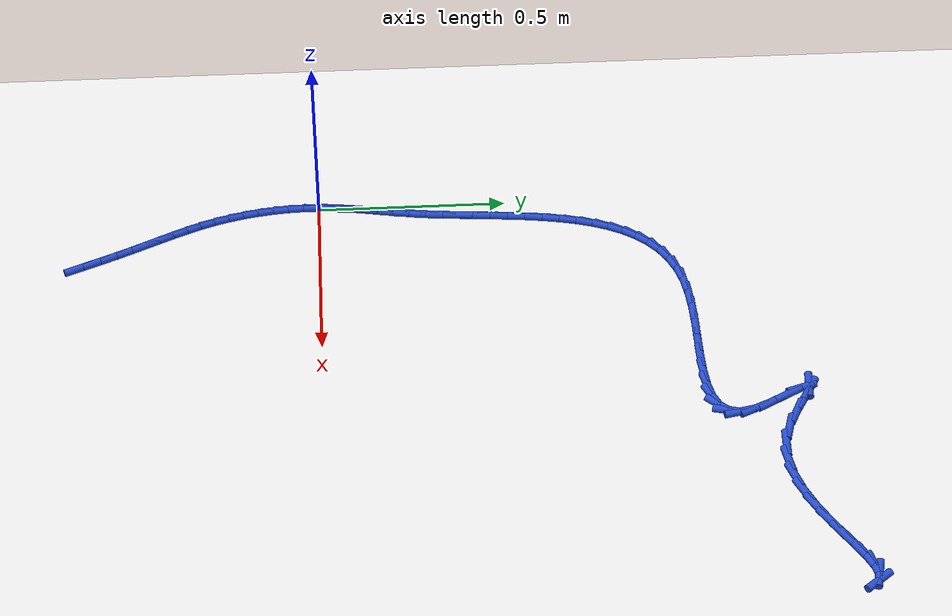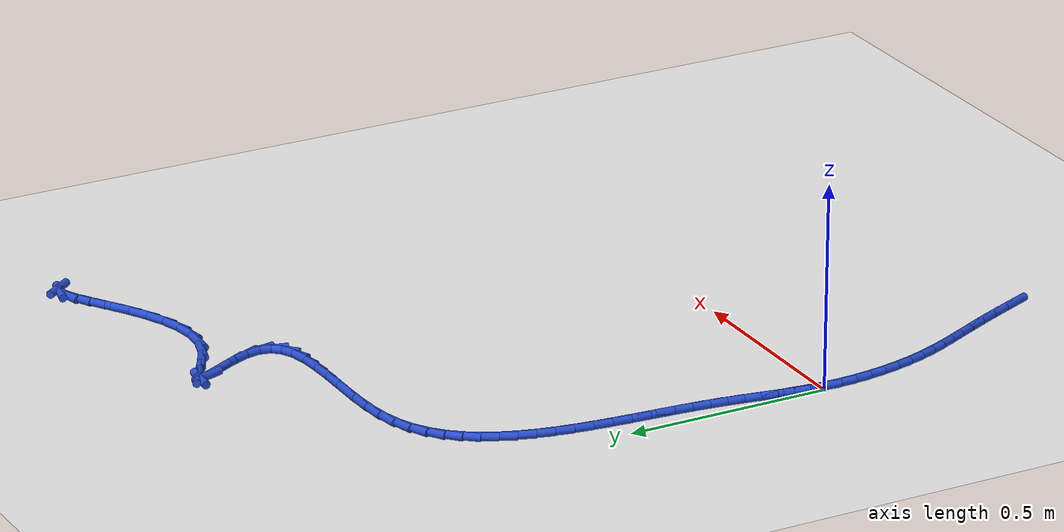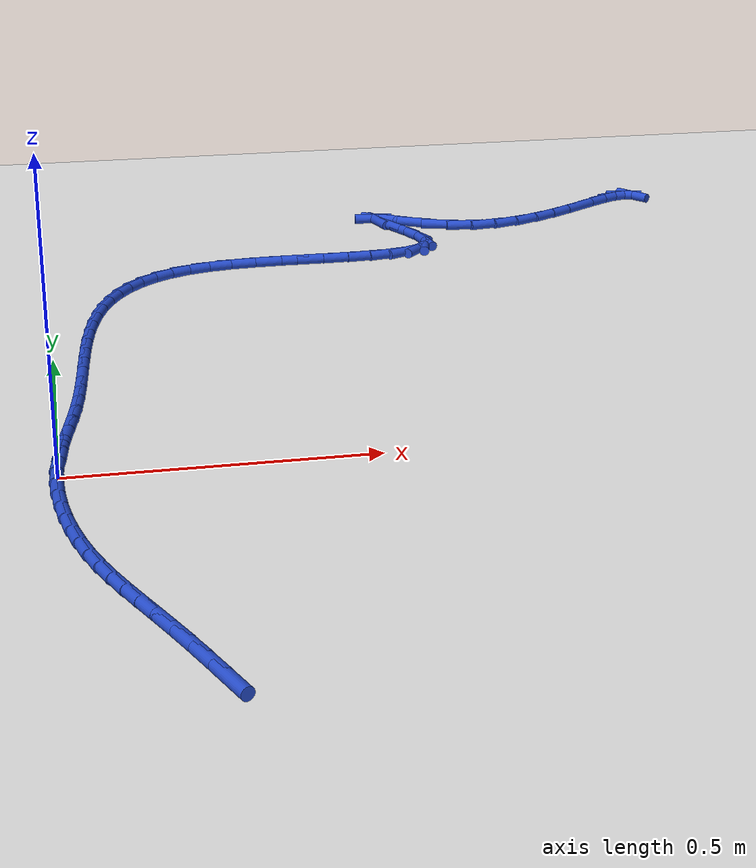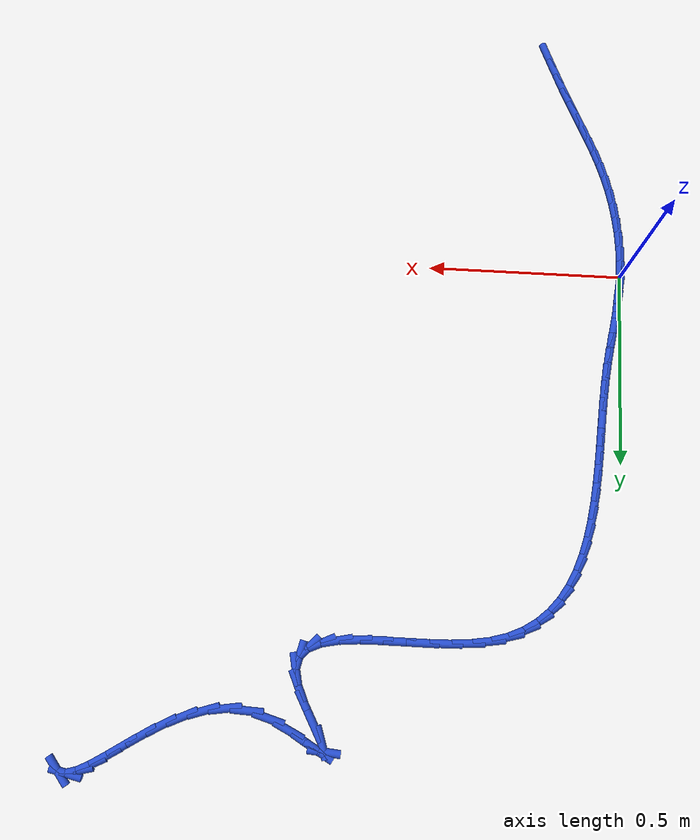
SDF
<sdf version="1.6">
 <world name="default">
  <model name="ground_plane">
   <static>1</static>
   <link name="link">
    <collision name="collision">
     <geometry><plane><normal>0 0 1</normal><size>100 100</size></plane></geometry>
     <surface><friction><ode><mu>100</mu><mu2>50</mu2></ode></friction></surface>
    </collision>
    <visual name="visual">
     <cast_shadows>0</cast_shadows>
     <geometry><plane><normal>0 0 1</normal><size>100 100</size></plane></geometry>
     <material>
      <script><uri>file://media/materials/scripts/gazebo.material</uri><name>Gazebo/WhiteGlow</name></script>
     </material>
    </visual>
   </link>
  </model>
  <model name="line">
   <link name="link_0">
    <pose>-6.938893903907228e-18 -6.245004513516506e-17 0.01 0 1.57 1.5021006200074025</pose>
    <collision name="collision">
     <geometry><cylinder><radius>0.01</radius><length>0.08</length></cylinder></geometry>
    </collision>
    <visual name="visual">
     <material>
      <script><name>Gazebo/Blue</name><uri>file://media/materials/scripts/gazebo.material</uri></script>
     </material>
     <geometry><cylinder><radius>0.01</radius><length>0.08</length></cylinder></geometry>
    </visual>
   </link>
   <link name="link_1">
    <pose>0.0027267239276529457 0.03963032738421461 0.01 0 1.57 1.4554943198196943</pose>
    <collision name="collision">
     <geometry><cylinder><radius>0.01</radius><length>0.08</length></cylinder></geometry>
    </collision>
    <visual name="visual">
     <material>
      <script><name>Gazebo/Blue</name><uri>file://media/materials/scripts/gazebo.material</uri></script>
     </material>
     <geometry><cylinder><radius>0.01</radius><length>0.08</length></cylinder></geometry>
    </visual>
   </link>
   <link name="link_2">
    <pose>0.007264452210305063 0.07881092391591504 0.01 0 1.57 1.4231866468837562</pose>
    <collision name="collision">
     <geometry><cylinder><radius>0.01</radius><length>0.08</length></cylinder></geometry>
    </collision>
    <visual name="visual">
     <material>
      <script><name>Gazebo/Blue</name><uri>file://media/materials/scripts/gazebo.material</uri></script>
     </material>
     <geometry><cylinder><radius>0.01</radius><length>0.08</length></cylinder></geometry>
    </visual>
   </link>
   <link name="link_3">
    <pose>0.013079901349454644 0.11792184670235839 0.01 0 1.57 1.4059026485359816</pose>
    <collision name="collision">
     <geometry><cylinder><radius>0.01</radius><length>0.08</length></cylinder></geometry>
    </collision>
    <visual name="visual">
     <material>
      <script><name>Gazebo/Blue</name><uri>file://media/materials/scripts/gazebo.material</uri></script>
     </material>
     <geometry><cylinder><radius>0.01</radius><length>0.08</length></cylinder></geometry>
    </visual>
   </link>
   <link name="link_4">
    <pose>0.01963978784659997 0.1573431528508017 0.01 0 1.57 1.4035683912971355</pose>
    <collision name="collision">
     <geometry><cylinder><radius>0.01</radius><length>0.08</length></cylinder></geometry>
    </collision>
    <visual name="visual">
     <material>
      <script><name>Gazebo/Blue</name><uri>file://media/materials/scripts/gazebo.material</uri></script>
     </material>
     <geometry><cylinder><radius>0.01</radius><length>0.08</length></cylinder></geometry>
    </visual>
   </link>
   <link name="link_5">
    <pose>0.026410828203239364 0.1974548994685022 0.01 0 1.57 1.4154633653897009</pose>
    <collision name="collision">
     <geometry><cylinder><radius>0.01</radius><length>0.08</length></cylinder></geometry>
    </collision>
    <visual name="visual">
     <material>
      <script><name>Gazebo/Blue</name><uri>file://media/materials/scripts/gazebo.material</uri></script>
     </material>
     <geometry><cylinder><radius>0.01</radius><length>0.08</length></cylinder></geometry>
    </visual>
   </link>
   <link name="link_6">
    <pose>0.0328597389208711 0.23863714366271702 0.01 0 1.57 1.4402662695296489</pose>
    <collision name="collision">
     <geometry><cylinder><radius>0.01</radius><length>0.08</length></cylinder></geometry>
    </collision>
    <visual name="visual">
     <material>
      <script><name>Gazebo/Blue</name><uri>file://media/materials/scripts/gazebo.material</uri></script>
     </material>
     <geometry><cylinder><radius>0.01</radius><length>0.08</length></cylinder></geometry>
    </visual>
   </link>
   <link name="link_7">
    <pose>0.038456108458912466 0.2812675512997279 0.01 0 1.57 1.4690482943396301</pose>
    <collision name="collision">
     <geometry><cylinder><radius>0.01</radius><length>0.08</length></cylinder></geometry>
    </collision>
    <visual name="visual">
     <material>
      <script><name>Gazebo/Blue</name><uri>file://media/materials/scripts/gazebo.material</uri></script>
     </material>
     <geometry><cylinder><radius>0.01</radius><length>0.08</length></cylinder></geometry>
    </visual>
   </link>
   <link name="link_8">
    <pose>0.0429696073407799 0.32547393481912695 0.01 0 1.57 1.488264325107925</pose>
    <collision name="collision">
     <geometry><cylinder><radius>0.01</radius><length>0.08</length></cylinder></geometry>
    </collision>
    <visual name="visual">
     <material>
      <script><name>Gazebo/Blue</name><uri>file://media/materials/scripts/gazebo.material</uri></script>
     </material>
     <geometry><cylinder><radius>0.01</radius><length>0.08</length></cylinder></geometry>
    </visual>
   </link>
   <link name="link_9">
    <pose>0.04672879912465362 0.3709187628207979 0.01 0 1.57 1.4976051488358824</pose>
    <collision name="collision">
     <geometry><cylinder><radius>0.01</radius><length>0.08</length></cylinder></geometry>
    </collision>
    <visual name="visual">
     <material>
      <script><name>Gazebo/Blue</name><uri>file://media/materials/scripts/gazebo.material</uri></script>
     </material>
     <geometry><cylinder><radius>0.01</radius><length>0.08</length></cylinder></geometry>
    </visual>
   </link>
   <link name="link_10">
    <pose>0.05012324476902144 0.4172137164324141 0.01 0 1.57 1.4977975830449848</pose>
    <collision name="collision">
     <geometry><cylinder><radius>0.01</radius><length>0.08</length></cylinder></geometry>
    </collision>
    <visual name="visual">
     <material>
      <script><name>Gazebo/Blue</name><uri>file://media/materials/scripts/gazebo.material</uri></script>
     </material>
     <geometry><cylinder><radius>0.01</radius><length>0.08</length></cylinder></geometry>
    </visual>
   </link>
   <link name="link_11">
    <pose>0.05354250523237119 0.4639704767816501 0.01 0 1.57 1.489116066419774</pose>
    <collision name="collision">
     <geometry><cylinder><radius>0.01</radius><length>0.08</length></cylinder></geometry>
    </collision>
    <visual name="visual">
     <material>
      <script><name>Gazebo/Blue</name><uri>file://media/materials/scripts/gazebo.material</uri></script>
     </material>
     <geometry><cylinder><radius>0.01</radius><length>0.08</length></cylinder></geometry>
    </visual>
   </link>
   <link name="link_12">
    <pose>0.05737614147319069 0.5108007249961795 0.01 0 1.57 1.4714250133631803</pose>
    <collision name="collision">
     <geometry><cylinder><radius>0.01</radius><length>0.08</length></cylinder></geometry>
    </collision>
    <visual name="visual">
     <material>
      <script><name>Gazebo/Blue</name><uri>file://media/materials/scripts/gazebo.material</uri></script>
     </material>
     <geometry><cylinder><radius>0.01</radius><length>0.08</length></cylinder></geometry>
    </visual>
   </link>
   <link name="link_13">
    <pose>0.06201371444996775 0.5573161422036758 0.01 0 1.57 1.4441952107664746</pose>
    <collision name="collision">
     <geometry><cylinder><radius>0.01</radius><length>0.08</length></cylinder></geometry>
    </collision>
    <visual name="visual">
     <material>
      <script><name>Gazebo/Blue</name><uri>file://media/materials/scripts/gazebo.material</uri></script>
     </material>
     <geometry><cylinder><radius>0.01</radius><length>0.08</length></cylinder></geometry>
    </visual>
   </link>
   <link name="link_14">
    <pose>0.06784478512119022 0.6031284095318131 0.01 0 1.57 1.4065036133232842</pose>
    <collision name="collision">
     <geometry><cylinder><radius>0.01</radius><length>0.08</length></cylinder></geometry>
    </collision>
    <visual name="visual">
     <material>
      <script><name>Gazebo/Blue</name><uri>file://media/materials/scripts/gazebo.material</uri></script>
     </material>
     <geometry><cylinder><radius>0.01</radius><length>0.08</length></cylinder></geometry>
    </visual>
   </link>
   <link name="link_15">
    <pose>0.0752589144453459 0.6478492081082656 0.01 0 1.57 1.3570331334644816</pose>
    <collision name="collision">
     <geometry><cylinder><radius>0.01</radius><length>0.08</length></cylinder></geometry>
    </collision>
    <visual name="visual">
     <material>
      <script><name>Gazebo/Blue</name><uri>file://media/materials/scripts/gazebo.material</uri></script>
     </material>
     <geometry><cylinder><radius>0.01</radius><length>0.08</length></cylinder></geometry>
    </visual>
   </link>
   <link name="link_16">
    <pose>0.08464566338092261 0.6910902190607068 0.01 0 1.57 1.2941041055894604</pose>
    <collision name="collision">
     <geometry><cylinder><radius>0.01</radius><length>0.08</length></cylinder></geometry>
    </collision>
    <visual name="visual">
     <material>
      <script><name>Gazebo/Blue</name><uri>file://media/materials/scripts/gazebo.material</uri></script>
     </material>
     <geometry><cylinder><radius>0.01</radius><length>0.08</length></cylinder></geometry>
    </visual>
   </link>
   <link name="link_17">
    <pose>0.0963945928864082 0.7324631235168105 0.01 0 1.57 1.215796517895862</pose>
    <collision name="collision">
     <geometry><cylinder><radius>0.01</radius><length>0.08</length></cylinder></geometry>
    </collision>
    <visual name="visual">
     <material>
      <script><name>Gazebo/Blue</name><uri>file://media/materials/scripts/gazebo.material</uri></script>
     </material>
     <geometry><cylinder><radius>0.01</radius><length>0.08</length></cylinder></geometry>
    </visual>
   </link>
   <link name="link_18">
    <pose>0.11089526392029046 0.7715796026042507 0.01 0 1.57 1.1202603138324374</pose>
    <collision name="collision">
     <geometry><cylinder><radius>0.01</radius><length>0.08</length></cylinder></geometry>
    </collision>
    <visual name="visual">
     <material>
      <script><name>Gazebo/Blue</name><uri>file://media/materials/scripts/gazebo.material</uri></script>
     </material>
     <geometry><cylinder><radius>0.01</radius><length>0.08</length></cylinder></geometry>
    </visual>
   </link>
   <link name="link_19">
    <pose>0.1285372374410572 0.8080513374507012 0.01 0 1.57 1.0063334147361882</pose>
    <collision name="collision">
     <geometry><cylinder><radius>0.01</radius><length>0.08</length></cylinder></geometry>
    </collision>
    <visual name="visual">
     <material>
      <script><name>Gazebo/Blue</name><uri>file://media/materials/scripts/gazebo.material</uri></script>
     </material>
     <geometry><cylinder><radius>0.01</radius><length>0.08</length></cylinder></geometry>
    </visual>
   </link>
   <link name="link_20">
    <pose>0.1497100744071963 0.8414900091838358 0.01 0 1.57 0.8745097342246216</pose>
    <collision name="collision">
     <geometry><cylinder><radius>0.01</radius><length>0.08</length></cylinder></geometry>
    </collision>
    <visual name="visual">
     <material>
      <script><name>Gazebo/Blue</name><uri>file://media/materials/scripts/gazebo.material</uri></script>
     </material>
     <geometry><cylinder><radius>0.01</radius><length>0.08</length></cylinder></geometry>
    </visual>
   </link>
   <link name="link_21">
    <pose>0.17480333577719556 0.8715072989313284 0.01 0 1.57 0.7279966299282523</pose>
    <collision name="collision">
     <geometry><cylinder><radius>0.01</radius><length>0.08</length></cylinder></geometry>
    </collision>
    <visual name="visual">
     <material>
      <script><name>Gazebo/Blue</name><uri>file://media/materials/scripts/gazebo.material</uri></script>
     </material>
     <geometry><cylinder><radius>0.01</radius><length>0.08</length></cylinder></geometry>
    </visual>
   </link>
   <link name="link_22">
    <pose>0.20420658250954285 0.8977148878208531 0.01 0 1.57 0.5731269458894008</pose>
    <collision name="collision">
     <geometry><cylinder><radius>0.01</radius><length>0.08</length></cylinder></geometry>
    </collision>
    <visual name="visual">
     <material>
      <script><name>Gazebo/Blue</name><uri>file://media/materials/scripts/gazebo.material</uri></script>
     </material>
     <geometry><cylinder><radius>0.01</radius><length>0.08</length></cylinder></geometry>
    </visual>
   </link>
   <link name="link_23">
    <pose>0.23830937556272588 0.9197244569800833 0.01 0 1.57 0.4183225107185028</pose>
    <collision name="collision">
     <geometry><cylinder><radius>0.01</radius><length>0.08</length></cylinder></geometry>
    </collision>
    <visual name="visual">
     <material>
      <script><name>Gazebo/Blue</name><uri>file://media/materials/scripts/gazebo.material</uri></script>
     </material>
     <geometry><cylinder><radius>0.01</radius><length>0.08</length></cylinder></geometry>
    </visual>
   </link>
   <link name="link_24">
    <pose>0.27750127589523255 0.9371476875366931 0.01 0 1.57 0.2717907313782398</pose>
    <collision name="collision">
     <geometry><cylinder><radius>0.01</radius><length>0.08</length></cylinder></geometry>
    </collision>
    <visual name="visual">
     <material>
      <script><name>Gazebo/Blue</name><uri>file://media/materials/scripts/gazebo.material</uri></script>
     </material>
     <geometry><cylinder><radius>0.01</radius><length>0.08</length></cylinder></geometry>
    </visual>
   </link>
   <link name="link_25">
    <pose>0.32217133962764966 0.949596652982366 0.01 0 1.57 0.1483278691495684</pose>
    <collision name="collision">
     <geometry><cylinder><radius>0.01</radius><length>0.08</length></cylinder></geometry>
    </collision>
    <visual name="visual">
     <material>
      <script><name>Gazebo/Blue</name><uri>file://media/materials/scripts/gazebo.material</uri></script>
     </material>
     <geometry><cylinder><radius>0.01</radius><length>0.08</length></cylinder></geometry>
    </visual>
   </link>
   <link name="link_26">
    <pose>0.37220704788992615 0.9570732548593075 0.01 0 1.57 0.0672593623460096</pose>
    <collision name="collision">
     <geometry><cylinder><radius>0.01</radius><length>0.08</length></cylinder></geometry>
    </collision>
    <visual name="visual">
     <material>
      <script><name>Gazebo/Blue</name><uri>file://media/materials/scripts/gazebo.material</uri></script>
     </material>
     <geometry><cylinder><radius>0.01</radius><length>0.08</length></cylinder></geometry>
    </visual>
   </link>
   <link name="link_27">
    <pose>0.42605352509631317 0.960700405759176 0.01 0 1.57 0.019710770947912463</pose>
    <collision name="collision">
     <geometry><cylinder><radius>0.01</radius><length>0.08</length></cylinder></geometry>
    </collision>
    <visual name="visual">
     <material>
      <script><name>Gazebo/Blue</name><uri>file://media/materials/scripts/gazebo.material</uri></script>
     </material>
     <geometry><cylinder><radius>0.01</radius><length>0.08</length></cylinder></geometry>
    </visual>
   </link>
   <link name="link_28">
    <pose>0.48189821436977776 0.9618012902116498 0.01 0 1.57 -0.0018239643694814589</pose>
    <collision name="collision">
     <geometry><cylinder><radius>0.01</radius><length>0.08</length></cylinder></geometry>
    </collision>
    <visual name="visual">
     <material>
      <script><name>Gazebo/Blue</name><uri>file://media/materials/scripts/gazebo.material</uri></script>
     </material>
     <geometry><cylinder><radius>0.01</radius><length>0.08</length></cylinder></geometry>
    </visual>
   </link>
   <link name="link_29">
    <pose>0.5379285588332865 0.9616990927464069 0.01 0 1.57 0.0003291178858828716</pose>
    <collision name="collision">
     <geometry><cylinder><radius>0.01</radius><length>0.08</length></cylinder></geometry>
    </collision>
    <visual name="visual">
     <material>
      <script><name>Gazebo/Blue</name><uri>file://media/materials/scripts/gazebo.material</uri></script>
     </material>
     <geometry><cylinder><radius>0.01</radius><length>0.08</length></cylinder></geometry>
    </visual>
   </link>
   <link name="link_30">
    <pose>0.5923320016098067 0.9617169978931247 0.01 0 1.57 0.028663224170669157</pose>
    <collision name="collision">
     <geometry><cylinder><radius>0.01</radius><length>0.08</length></cylinder></geometry>
    </collision>
    <visual name="visual">
     <material>
      <script><name>Gazebo/Blue</name><uri>file://media/materials/scripts/gazebo.material</uri></script>
     </material>
     <geometry><cylinder><radius>0.01</radius><length>0.08</length></cylinder></geometry>
    </visual>
   </link>
   <link name="link_31">
    <pose>0.6432959858223048 0.963178190181482 0.01 0 1.57 0.09222249360228521</pose>
    <collision name="collision">
     <geometry><cylinder><radius>0.01</radius><length>0.08</length></cylinder></geometry>
    </collision>
    <visual name="visual">
     <material>
      <script><name>Gazebo/Blue</name><uri>file://media/materials/scripts/gazebo.material</uri></script>
     </material>
     <geometry><cylinder><radius>0.01</radius><length>0.08</length></cylinder></geometry>
    </visual>
   </link>
   <link name="link_32">
    <pose>0.6890079545937482 0.9674058541411569 0.01 0 1.57 0.21197721846874035</pose>
    <collision name="collision">
     <geometry><cylinder><radius>0.01</radius><length>0.08</length></cylinder></geometry>
    </collision>
    <visual name="visual">
     <material>
      <script><name>Gazebo/Blue</name><uri>file://media/materials/scripts/gazebo.material</uri></script>
     </material>
     <geometry><cylinder><radius>0.01</radius><length>0.08</length></cylinder></geometry>
    </visual>
   </link>
   <link name="link_33">
    <pose>0.7276553510471031 0.9757231743018265 0.01 0 1.57 0.4321318627183691</pose>
    <collision name="collision">
     <geometry><cylinder><radius>0.01</radius><length>0.08</length></cylinder></geometry>
    </collision>
    <visual name="visual">
     <material>
      <script><name>Gazebo/Blue</name><uri>file://media/materials/scripts/gazebo.material</uri></script>
     </material>
     <geometry><cylinder><radius>0.01</radius><length>0.08</length></cylinder></geometry>
    </visual>
   </link>
   <link name="link_34">
    <pose>0.757425618305337 0.98945333519317 0.01 0 1.57 0.8204209601151605</pose>
    <collision name="collision">
     <geometry><cylinder><radius>0.01</radius><length>0.08</length></cylinder></geometry>
    </collision>
    <visual name="visual">
     <material>
      <script><name>Gazebo/Blue</name><uri>file://media/materials/scripts/gazebo.material</uri></script>
     </material>
     <geometry><cylinder><radius>0.01</radius><length>0.08</length></cylinder></geometry>
    </visual>
   </link>
   <link name="link_35">
    <pose>0.7765061994914164 1.009919521344865 0.01 0 1.57 1.3441454457149902</pose>
    <collision name="collision">
     <geometry><cylinder><radius>0.01</radius><length>0.08</length></cylinder></geometry>
    </collision>
    <visual name="visual">
     <material>
      <script><name>Gazebo/Blue</name><uri>file://media/materials/scripts/gazebo.material</uri></script>
     </material>
     <geometry><cylinder><radius>0.01</radius><length>0.08</length></cylinder></geometry>
    </visual>
   </link>
   <link name="link_36">
    <pose>0.7830845377283083 1.0384449172865893 0.01 0 1.57 -1.3707157688812357</pose>
    <collision name="collision">
     <geometry><cylinder><radius>0.01</radius><length>0.08</length></cylinder></geometry>
    </collision>
    <visual name="visual">
     <material>
      <script><name>Gazebo/Blue</name><uri>file://media/materials/scripts/gazebo.material</uri></script>
     </material>
     <geometry><cylinder><radius>0.01</radius><length>0.08</length></cylinder></geometry>
    </visual>
   </link>
   <link name="link_37">
    <pose>0.7754078762697585 1.0762994152191472 0.01 0 1.57 -1.1551632312955453</pose>
    <collision name="collision">
     <geometry><cylinder><radius>0.01</radius><length>0.08</length></cylinder></geometry>
    </collision>
    <visual name="visual">
     <material>
      <script><name>Gazebo/Blue</name><uri>file://media/materials/scripts/gazebo.material</uri></script>
     </material>
     <geometry><cylinder><radius>0.01</radius><length>0.08</length></cylinder></geometry>
    </visual>
   </link>
   <link name="link_38">
    <pose>0.7555140840587454 1.1213747998336012 0.01 0 1.57 -1.0780575640294277</pose>
    <collision name="collision">
     <geometry><cylinder><radius>0.01</radius><length>0.08</length></cylinder></geometry>
    </collision>
    <visual name="visual">
     <material>
      <script><name>Gazebo/Blue</name><uri>file://media/materials/scripts/gazebo.material</uri></script>
     </material>
     <geometry><cylinder><radius>0.01</radius><length>0.08</length></cylinder></geometry>
    </visual>
   </link>
   <link name="link_39">
    <pose>0.7314360648644153 1.1662202359403488 0.01 0 1.57 -1.0780818511939423</pose>
    <collision name="collision">
     <geometry><cylinder><radius>0.01</radius><length>0.08</length></cylinder></geometry>
    </collision>
    <visual name="visual">
     <material>
      <script><name>Gazebo/Blue</name><uri>file://media/materials/scripts/gazebo.material</uri></script>
     </material>
     <geometry><cylinder><radius>0.01</radius><length>0.08</length></cylinder></geometry>
    </visual>
   </link>
   <link name="link_40">
    <pose>0.7117366564558378 1.2029126248841853 0.01 0 1.57 -1.2540359668885221</pose>
    <collision name="collision">
     <geometry><cylinder><radius>0.01</radius><length>0.08</length></cylinder></geometry>
    </collision>
    <visual name="visual">
     <material>
      <script><name>Gazebo/Blue</name><uri>file://media/materials/scripts/gazebo.material</uri></script>
     </material>
     <geometry><cylinder><radius>0.01</radius><length>0.08</length></cylinder></geometry>
    </visual>
   </link>
   <link name="link_41">
    <pose>0.7049786966020819 1.223528868009904 0.01 0 1.57 -0.08681060316070477</pose>
    <collision name="collision">
     <geometry><cylinder><radius>0.01</radius><length>0.08</length></cylinder></geometry>
    </collision>
    <visual name="visual">
     <material>
      <script><name>Gazebo/Blue</name><uri>file://media/materials/scripts/gazebo.material</uri></script>
     </material>
     <geometry><cylinder><radius>0.01</radius><length>0.08</length></cylinder></geometry>
    </visual>
   </link>
   <link name="link_42">
    <pose>0.7178736517803205 1.222406628660325 0.01 0 1.57 -0.5250563731306367</pose>
    <collision name="collision">
     <geometry><cylinder><radius>0.01</radius><length>0.08</length></cylinder></geometry>
    </collision>
    <visual name="visual">
     <material>
      <script><name>Gazebo/Blue</name><uri>file://media/materials/scripts/gazebo.material</uri></script>
     </material>
     <geometry><cylinder><radius>0.01</radius><length>0.08</length></cylinder></geometry>
    </visual>
   </link>
   <link name="link_43">
    <pose>0.7481270530720846 1.2048809733400576 0.01 0 1.57 -0.5353121489579198</pose>
    <collision name="collision">
     <geometry><cylinder><radius>0.01</radius><length>0.08</length></cylinder></geometry>
    </collision>
    <visual name="visual">
     <material>
      <script><name>Gazebo/Blue</name><uri>file://media/materials/scripts/gazebo.material</uri></script>
     </material>
     <geometry><cylinder><radius>0.01</radius><length>0.08</length></cylinder></geometry>
    </visual>
   </link>
   <link name="link_44">
    <pose>0.7907099607079993 1.1796261084720483 0.01 0 1.57 -0.4534554167849261</pose>
    <collision name="collision">
     <geometry><cylinder><radius>0.01</radius><length>0.08</length></cylinder></geometry>
    </collision>
    <visual name="visual">
     <material>
      <script><name>Gazebo/Blue</name><uri>file://media/materials/scripts/gazebo.material</uri></script>
     </material>
     <geometry><cylinder><radius>0.01</radius><length>0.08</length></cylinder></geometry>
    </visual>
   </link>
   <link name="link_45">
    <pose>0.8405928110042233 1.155317002358899 0.01 0 1.57 -0.27809004849964014</pose>
    <collision name="collision">
     <geometry><cylinder><radius>0.01</radius><length>0.08</length></cylinder></geometry>
    </collision>
    <visual name="visual">
     <material>
      <script><name>Gazebo/Blue</name><uri>file://media/materials/scripts/gazebo.material</uri></script>
     </material>
     <geometry><cylinder><radius>0.01</radius><length>0.08</length></cylinder></geometry>
    </visual>
   </link>
   <link name="link_46">
    <pose>0.8928393934876392 1.1404012520815043 0.01 0 1.57 -0.04532109773640246</pose>
    <collision name="collision">
     <geometry><cylinder><radius>0.01</radius><length>0.08</length></cylinder></geometry>
    </collision>
    <visual name="visual">
     <material>
      <script><name>Gazebo/Blue</name><uri>file://media/materials/scripts/gazebo.material</uri></script>
     </material>
     <geometry><cylinder><radius>0.01</radius><length>0.08</length></cylinder></geometry>
    </visual>
   </link>
   <link name="link_47">
    <pose>0.9446798115000589 1.1380501775057201 0.01 0 1.57 0.15765639621176952</pose>
    <collision name="collision">
     <geometry><cylinder><radius>0.01</radius><length>0.08</length></cylinder></geometry>
    </collision>
    <visual name="visual">
     <material>
      <script><name>Gazebo/Blue</name><uri>file://media/materials/scripts/gazebo.material</uri></script>
     </material>
     <geometry><cylinder><radius>0.01</radius><length>0.08</length></cylinder></geometry>
    </visual>
   </link>
   <link name="link_48">
    <pose>0.9955211972302664 1.1461327237340586 0.01 0 1.57 0.3163457013097217</pose>
    <collision name="collision">
     <geometry><cylinder><radius>0.01</radius><length>0.08</length></cylinder></geometry>
    </collision>
    <visual name="visual">
     <material>
      <script><name>Gazebo/Blue</name><uri>file://media/materials/scripts/gazebo.material</uri></script>
     </material>
     <geometry><cylinder><radius>0.01</radius><length>0.08</length></cylinder></geometry>
    </visual>
   </link>
   <link name="link_49">
    <pose>1.0448661791005334 1.1622852450978343 0.01 0 1.57 0.43248521061305295</pose>
    <collision name="collision">
     <geometry><cylinder><radius>0.01</radius><length>0.08</length></cylinder></geometry>
    </collision>
    <visual name="visual">
     <material>
      <script><name>Gazebo/Blue</name><uri>file://media/materials/scripts/gazebo.material</uri></script>
     </material>
     <geometry><cylinder><radius>0.01</radius><length>0.08</length></cylinder></geometry>
    </visual>
   </link>
   <link name="link_50">
    <pose>1.0922173855331319 1.1841440959283611 0.01 0 1.57 0.5118432032365489</pose>
    <collision name="collision">
     <geometry><cylinder><radius>0.01</radius><length>0.08</length></cylinder></geometry>
    </collision>
    <visual name="visual">
     <material>
      <script><name>Gazebo/Blue</name><uri>file://media/materials/scripts/gazebo.material</uri></script>
     </material>
     <geometry><cylinder><radius>0.01</radius><length>0.08</length></cylinder></geometry>
    </visual>
   </link>
   <link name="link_51">
    <pose>1.137077444950333 1.2093456305569525 0.01 0 1.57 0.5587857986424692</pose>
    <collision name="collision">
     <geometry><cylinder><radius>0.01</radius><length>0.08</length></cylinder></geometry>
    </collision>
    <visual name="visual">
     <material>
      <script><name>Gazebo/Blue</name><uri>file://media/materials/scripts/gazebo.material</uri></script>
     </material>
     <geometry><cylinder><radius>0.01</radius><length>0.08</length></cylinder></geometry>
    </visual>
   </link>
   <link name="link_52">
    <pose>1.178948985774408 1.235526203314923 0.01 0 1.57 0.5735367124205788</pose>
    <collision name="collision">
     <geometry><cylinder><radius>0.01</radius><length>0.08</length></cylinder></geometry>
    </collision>
    <visual name="visual">
     <material>
      <script><name>Gazebo/Blue</name><uri>file://media/materials/scripts/gazebo.material</uri></script>
     </material>
     <geometry><cylinder><radius>0.01</radius><length>0.08</length></cylinder></geometry>
    </visual>
   </link>
   <link name="link_53">
    <pose>1.217334636427629 1.260322168533587 0.01 0 1.57 0.5490578116631392</pose>
    <collision name="collision">
     <geometry><cylinder><radius>0.01</radius><length>0.08</length></cylinder></geometry>
    </collision>
    <visual name="visual">
     <material>
      <script><name>Gazebo/Blue</name><uri>file://media/materials/scripts/gazebo.material</uri></script>
     </material>
     <geometry><cylinder><radius>0.01</radius><length>0.08</length></cylinder></geometry>
    </visual>
   </link>
   <link name="link_54">
    <pose>1.251737025332267 1.2813698805442577 0.01 0 1.57 0.4629772458581888</pose>
    <collision name="collision">
     <geometry><cylinder><radius>0.01</radius><length>0.08</length></cylinder></geometry>
    </collision>
    <visual name="visual">
     <material>
      <script><name>Gazebo/Blue</name><uri>file://media/materials/scripts/gazebo.material</uri></script>
     </material>
     <geometry><cylinder><radius>0.01</radius><length>0.08</length></cylinder></geometry>
    </visual>
   </link>
   <link name="link_55">
    <pose>1.2816587809105937 1.2963056936782493 0.01 0 1.57 0.25342503249699866</pose>
    <collision name="collision">
     <geometry><cylinder><radius>0.01</radius><length>0.08</length></cylinder></geometry>
    </collision>
    <visual name="visual">
     <material>
      <script><name>Gazebo/Blue</name><uri>file://media/materials/scripts/gazebo.material</uri></script>
     </material>
     <geometry><cylinder><radius>0.01</radius><length>0.08</length></cylinder></geometry>
    </visual>
   </link>
   <link name="link_56">
    <pose>1.3066025315848806 1.3027659622668761 0.01 0 1.57 -0.22124293583382962</pose>
    <collision name="collision">
     <geometry><cylinder><radius>0.01</radius><length>0.08</length></cylinder></geometry>
    </collision>
    <visual name="visual">
     <material>
      <script><name>Gazebo/Blue</name><uri>file://media/materials/scripts/gazebo.material</uri></script>
     </material>
     <geometry><cylinder><radius>0.01</radius><length>0.08</length></cylinder></geometry>
    </visual>
   </link>
   <link name="link_57">
    <pose>1.3260709057773998 1.2983870406414524 0.01 0 1.57 -0.9132822585294198</pose>
    <collision name="collision">
     <geometry><cylinder><radius>0.01</radius><length>0.08</length></cylinder></geometry>
    </collision>
    <visual name="visual">
     <material>
      <script><name>Gazebo/Blue</name><uri>file://media/materials/scripts/gazebo.material</uri></script>
     </material>
     <geometry><cylinder><radius>0.01</radius><length>0.08</length></cylinder></geometry>
    </visual>
   </link>
   <link name="link_214">
    <pose>0.19459702243440608 -0.6330883903731794 0.01 0 1.57 -1.1701067217983838</pose>
    <collision name="collision">
     <geometry><cylinder><radius>0.01</radius><length>0.08</length></cylinder></geometry>
    </collision>
    <visual name="visual">
     <material>
      <script><name>Gazebo/Blue</name><uri>file://media/materials/scripts/gazebo.material</uri></script>
     </material>
     <geometry><cylinder><radius>0.01</radius><length>0.08</length></cylinder></geometry>
    </visual>
   </link>
   <link name="link_215">
    <pose>0.1748953118950544 -0.5865789094863139 0.01 0 1.57 -1.1618172304035594</pose>
    <collision name="collision">
     <geometry><cylinder><radius>0.01</radius><length>0.08</length></cylinder></geometry>
    </collision>
    <visual name="visual">
     <material>
      <script><name>Gazebo/Blue</name><uri>file://media/materials/scripts/gazebo.material</uri></script>
     </material>
     <geometry><cylinder><radius>0.01</radius><length>0.08</length></cylinder></geometry>
    </visual>
   </link>
   <link name="link_216">
    <pose>0.15563493192790762 -0.5421405599095802 0.01 0 1.57 -1.1475529563757465</pose>
    <collision name="collision">
     <geometry><cylinder><radius>0.01</radius><length>0.08</length></cylinder></geometry>
    </collision>
    <visual name="visual">
     <material>
      <script><name>Gazebo/Blue</name><uri>file://media/materials/scripts/gazebo.material</uri></script>
     </material>
     <geometry><cylinder><radius>0.01</radius><length>0.08</length></cylinder></geometry>
    </visual>
   </link>
   <link name="link_217">
    <pose>0.1367788396164505 -0.5002817019349901 0.01 0 1.57 -1.1335021040903674</pose>
    <collision name="collision">
     <geometry><cylinder><radius>0.01</radius><length>0.08</length></cylinder></geometry>
    </collision>
    <visual name="visual">
     <material>
      <script><name>Gazebo/Blue</name><uri>file://media/materials/scripts/gazebo.material</uri></script>
     </material>
     <geometry><cylinder><radius>0.01</radius><length>0.08</length></cylinder></geometry>
    </visual>
   </link>
   <link name="link_218">
    <pose>0.11839782724431022 -0.46096228356371977 0.01 0 1.57 -1.128511355110486</pose>
    <collision name="collision">
     <geometry><cylinder><radius>0.01</radius><length>0.08</length></cylinder></geometry>
    </collision>
    <visual name="visual">
     <material>
      <script><name>Gazebo/Blue</name><uri>file://media/materials/scripts/gazebo.material</uri></script>
     </material>
     <geometry><cylinder><radius>0.01</radius><length>0.08</length></cylinder></geometry>
    </visual>
   </link>
   <link name="link_219">
    <pose>0.1006794844220538 -0.42354826224890263 0.01 0 1.57 -1.1345821762582127</pose>
    <collision name="collision">
     <geometry><cylinder><radius>0.01</radius><length>0.08</length></cylinder></geometry>
    </collision>
    <visual name="visual">
     <material>
      <script><name>Gazebo/Blue</name><uri>file://media/materials/scripts/gazebo.material</uri></script>
     </material>
     <geometry><cylinder><radius>0.01</radius><length>0.08</length></cylinder></geometry>
    </visual>
   </link>
   <link name="link_220">
    <pose>0.08381723934727883 -0.38737590242243664 0.01 0 1.57 -1.1527369172576776</pose>
    <collision name="collision">
     <geometry><cylinder><radius>0.01</radius><length>0.08</length></cylinder></geometry>
    </collision>
    <visual name="visual">
     <material>
      <script><name>Gazebo/Blue</name><uri>file://media/materials/scripts/gazebo.material</uri></script>
     </material>
     <geometry><cylinder><radius>0.01</radius><length>0.08</length></cylinder></geometry>
    </visual>
   </link>
   <link name="link_221">
    <pose>0.06800452021758159 -0.3517814685162172 0.01 0 1.57 -1.1831187684564828</pose>
    <collision name="collision">
     <geometry><cylinder><radius>0.01</radius><length>0.08</length></cylinder></geometry>
    </collision>
    <visual name="visual">
     <material>
      <script><name>Gazebo/Blue</name><uri>file://media/materials/scripts/gazebo.material</uri></script>
     </material>
     <geometry><cylinder><radius>0.01</radius><length>0.08</length></cylinder></geometry>
    </visual>
   </link>
   <link name="link_222">
    <pose>0.05343475523055881 -0.3161012249621404 0.01 0 1.57 -1.2247874011533755</pose>
    <collision name="collision">
     <geometry><cylinder><radius>0.01</radius><length>0.08</length></cylinder></geometry>
    </collision>
    <visual name="visual">
     <material>
      <script><name>Gazebo/Blue</name><uri>file://media/materials/scripts/gazebo.material</uri></script>
     </material>
     <geometry><cylinder><radius>0.01</radius><length>0.08</length></cylinder></geometry>
    </visual>
   </link>
   <link name="link_223">
    <pose>0.040301372583806894 -0.27967143619210166 0.01 0 1.57 -1.275041264274929</pose>
    <collision name="collision">
     <geometry><cylinder><radius>0.01</radius><length>0.08</length></cylinder></geometry>
    </collision>
    <visual name="visual">
     <material>
      <script><name>Gazebo/Blue</name><uri>file://media/materials/scripts/gazebo.material</uri></script>
     </material>
     <geometry><cylinder><radius>0.01</radius><length>0.08</length></cylinder></geometry>
    </visual>
   </link>
   <link name="link_224">
    <pose>0.028791523959556725 -0.24189598027997958 0.01 0 1.57 -1.3262452497376098</pose>
    <collision name="collision">
     <geometry><cylinder><radius>0.01</radius><length>0.08</length></cylinder></geometry>
    </collision>
    <visual name="visual">
     <material>
      <script><name>Gazebo/Blue</name><uri>file://media/materials/scripts/gazebo.material</uri></script>
     </material>
     <geometry><cylinder><radius>0.01</radius><length>0.08</length></cylinder></geometry>
    </visual>
   </link>
   <link name="link_225">
    <pose>0.019034852019928515 -0.20279825012105815 0.01 0 1.57 -1.3759956892754754</pose>
    <collision name="collision">
     <geometry><cylinder><radius>0.01</radius><length>0.08</length></cylinder></geometry>
    </collision>
    <visual name="visual">
     <material>
      <script><name>Gazebo/Blue</name><uri>file://media/materials/scripts/gazebo.material</uri></script>
     </material>
     <geometry><cylinder><radius>0.01</radius><length>0.08</length></cylinder></geometry>
    </visual>
   </link>
   <link name="link_226">
    <pose>0.011130121558864772 -0.162734269856179 0.01 0 1.57 -1.4254270340914263</pose>
    <collision name="collision">
     <geometry><cylinder><radius>0.01</radius><length>0.08</length></cylinder></geometry>
    </collision>
    <visual name="visual">
     <material>
      <script><name>Gazebo/Blue</name><uri>file://media/materials/scripts/gazebo.material</uri></script>
     </material>
     <geometry><cylinder><radius>0.01</radius><length>0.08</length></cylinder></geometry>
    </visual>
   </link>
   <link name="link_227">
    <pose>0.005175801851352776 -0.12206324709848788 0.01 0 1.57 -1.4756410492622818</pose>
    <collision name="collision">
     <geometry><cylinder><radius>0.01</radius><length>0.08</length></cylinder></geometry>
    </collision>
    <visual name="visual">
     <material>
      <script><name>Gazebo/Blue</name><uri>file://media/materials/scripts/gazebo.material</uri></script>
     </material>
     <geometry><cylinder><radius>0.01</radius><length>0.08</length></cylinder></geometry>
    </visual>
   </link>
   <link name="link_228">
    <pose>0.0012703621723797126 -0.08114438946112959 0.01 0 1.57 -1.5277404056711732</pose>
    <collision name="collision">
     <geometry><cylinder><radius>0.01</radius><length>0.08</length></cylinder></geometry>
    </collision>
    <visual name="visual">
     <material>
      <script><name>Gazebo/Blue</name><uri>file://media/materials/scripts/gazebo.material</uri></script>
     </material>
     <geometry><cylinder><radius>0.01</radius><length>0.08</length></cylinder></geometry>
    </visual>
   </link>
   <link name="link_229">
    <pose>-0.00048772820306693023 -0.040336904557252036 0.01 0 1.57 1.5587055518158313</pose>
    <collision name="collision">
     <geometry><cylinder><radius>0.01</radius><length>0.08</length></cylinder></geometry>
    </collision>
    <visual name="visual">
     <material>
      <script><name>Gazebo/Blue</name><uri>file://media/materials/scripts/gazebo.material</uri></script>
     </material>
     <geometry><cylinder><radius>0.01</radius><length>0.08</length></cylinder></geometry>
    </visual>
   </link>
   <link name="link_230">
    <pose>-8.673617379884035e-18 -4.85722573273506e-17 0.01 0 1.57 1.499235039094796</pose>
    <collision name="collision">
     <geometry><cylinder><radius>0.01</radius><length>0.08</length></cylinder></geometry>
    </collision>
    <visual name="visual">
     <material>
      <script><name>Gazebo/Blue</name><uri>file://media/materials/scripts/gazebo.material</uri></script>
     </material>
     <geometry><cylinder><radius>0.01</radius><length>0.08</length></cylinder></geometry>
    </visual>
   </link>
   <link name="link_231">
    <pose>0.002832016056567752 0.03950711659748058 0.01 0 1.57 1.4339986812472796</pose>
    <collision name="collision">
     <geometry><cylinder><radius>0.01</radius><length>0.08</length></cylinder></geometry>
    </collision>
    <visual name="visual">
     <material>
      <script><name>Gazebo/Blue</name><uri>file://media/materials/scripts/gazebo.material</uri></script>
     </material>
     <geometry><cylinder><radius>0.01</radius><length>0.08</length></cylinder></geometry>
    </visual>
   </link>
   <link name="link_232">
    <pose>0.00810678924162363 0.077825237622044 0.01 0 1.57 1.467004066978893</pose>
    <collision name="collision">
     <geometry><cylinder><radius>0.01</radius><length>0.08</length></cylinder></geometry>
    </collision>
    <visual name="visual">
     <material>
      <script><name>Gazebo/Blue</name><uri>file://media/materials/scripts/gazebo.material</uri></script>
     </material>
     <geometry><cylinder><radius>0.01</radius><length>0.08</length></cylinder></geometry>
    </visual>
   </link>
  </model>
 </world>
</sdf>
